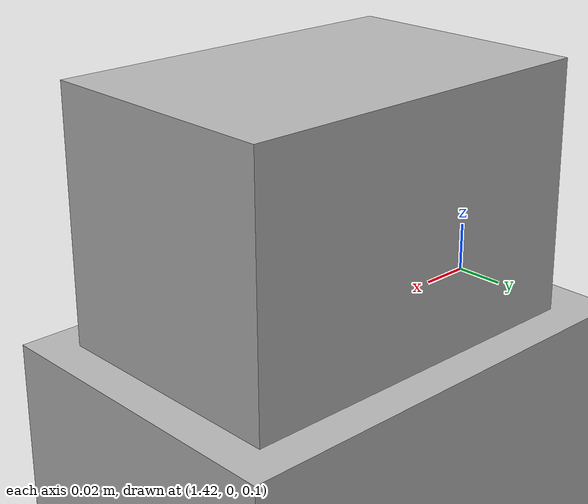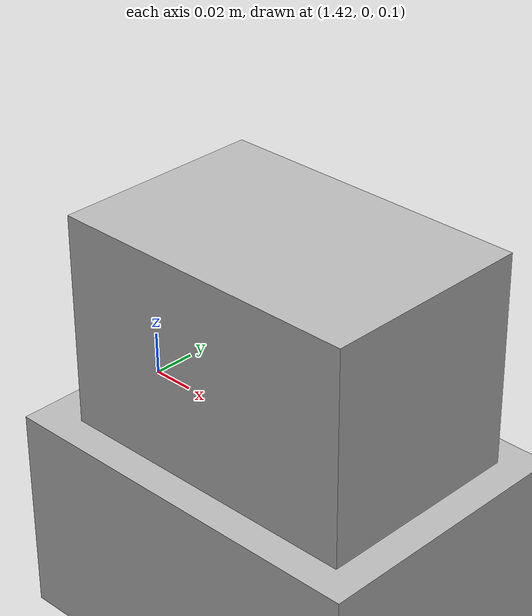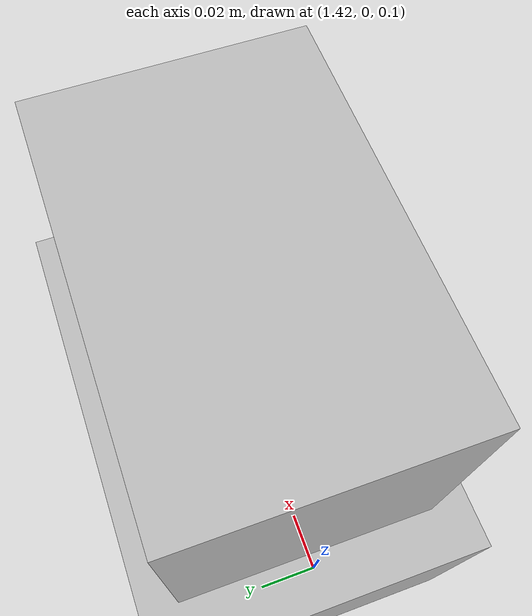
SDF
<sdf version="1.6">
 <world name="default">
  <light name="sun" type="directional">
   <pose>0 0 10 0 -0 0</pose>
   <diffuse>0.8 0.8 0.8 1</diffuse>
   <specular>0.1 0.1 0.1 1</specular>
   <attenuation>
    <range>1000</range>
    <constant>0.9</constant>
    <linear>0.01</linear>
    <quadratic>0.001</quadratic>
   </attenuation>
   <direction>-0.5 0.5 -1</direction>
  </light>
  <model name="ground_plane">
   <static>1</static>
   <link name="link">
    <collision name="collision">
     <geometry><plane><normal>0 0 1</normal><size>100 100</size></plane></geometry>
     <surface><friction><ode><mu>100</mu><mu2>50</mu2></ode></friction></surface>
    </collision>
    <visual name="visual">
     <cast_shadows>0</cast_shadows>
     <geometry><plane><normal>0 0 1</normal><size>100 100</size></plane></geometry>
     <material>
      <script><uri>file://media/materials/scripts/gazebo.material</uri><name>Gazebo/Grey</name></script>
     </material>
    </visual>
   </link>
  </model>
  <gravity>0 0 -9.8</gravity>
  <magnetic_field>6e-06 2.3e-05 -4.2e-05</magnetic_field>
  <atmosphere type="adiabatic"/>
  <physics name="default_physics" default="0" type="ode">
   <max_step_size>0.001</max_step_size>
   <real_time_factor>1</real_time_factor>
   <real_time_update_rate>1000</real_time_update_rate>
  </physics>
  <scene><ambient>0.4 0.4 0.4 1</ambient><background>0.7 0.7 0.7 1</background><shadows>1</shadows></scene>
  <spherical_coordinates>
   <surface_model>EARTH_WGS84</surface_model>
   <latitude_deg>0</latitude_deg>
   <longitude_deg>0</longitude_deg>
   <elevation>0</elevation>
   <heading_deg>0</heading_deg>
  </spherical_coordinates>
  <model name="example">
   <link name="base_footprint">
    <inertial>
     <pose>0 0 0.138199 0 -0 0</pose>
     <mass>11.85</mass>
     <inertia><ixx>3.52702</ixx><ixy>0</ixy><ixz>0</ixz><iyy>3.52702</iyy><iyz>0</iyz><izz>3.00202</izz></inertia>
    </inertial>
    <collision name="base_footprint_fixed_joint_lump__base_link_collision">
     <pose>0 0 0.05 0 -0 0</pose>
     <geometry><box><size>0.5 0.5 0.1</size></box></geometry>
    </collision>
    <collision name="base_footprint_fixed_joint_lump__IMU_base_link_collision">
     <pose>0 0 0.15 0 -0 0</pose>
     <geometry><box><size>0.15 0.1 0.1</size></box></geometry>
    </collision>
    <visual name="base_footprint_fixed_joint_lump__base_link_visual">
     <pose>0 0 0.05 0 -0 0</pose>
     <geometry><box><size>0.5 0.5 0.1</size></box></geometry>
    </visual>
    <visual name="base_footprint_fixed_joint_lump__IMU_base_link_visual">
     <pose>0 0 0.15 0 -0 0</pose>
     <geometry><box><size>0.15 0.1 0.1</size></box></geometry>
    </visual>
    <sensor name="imu_sensor" type="imu">
     <always_on>true</always_on>
     <update_rate>100</update_rate>
     <visualize>true</visualize>
     <topic>__default_topic__</topic>
     <plugin name="imu_plugin" filename="libgazebo_ros_imu_sensor.so">
      <topicName>/imu_data</topicName>
      <bodyName>imu_link</bodyName>
      <updateRateHZ>100.0</updateRateHZ>
      <gaussianNoise>0.0</gaussianNoise>
      <xyzOffset>0 0 0</xyzOffset>
      <rpyOffset>0 0 0</rpyOffset>
      <frameName>imu_link</frameName>
      <initialOrientationAsReference>false</initialOrientationAsReference>
     </plugin>
     <pose>0 0 0.15 0 -0 0</pose>
    </sensor>
   </link>
   <pose>1.5 0 0 0 -0 0</pose>
  </model>
 </world>
</sdf>
